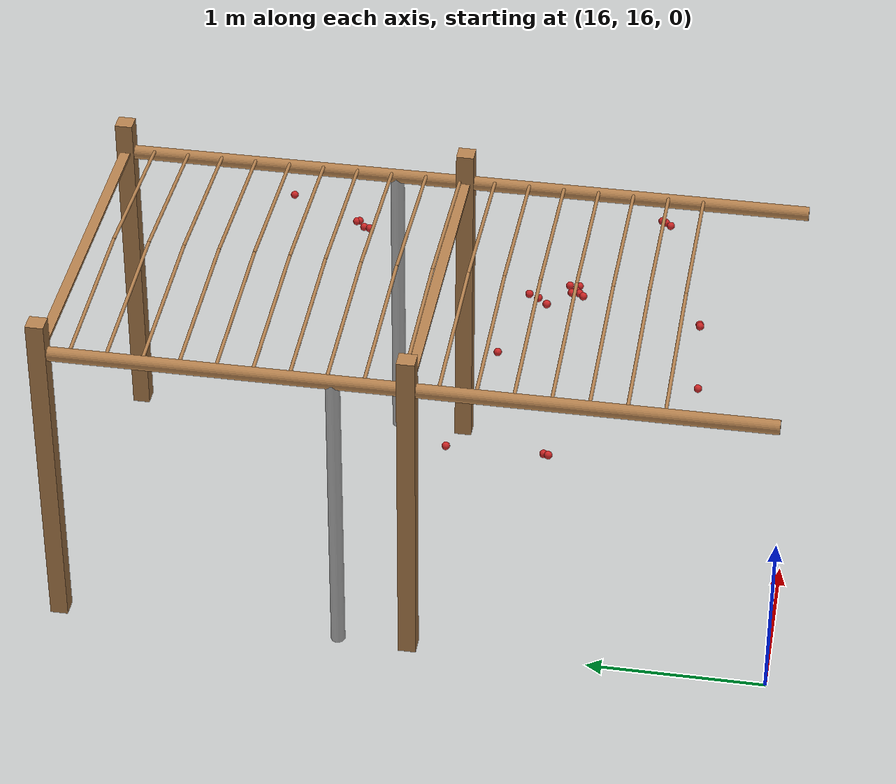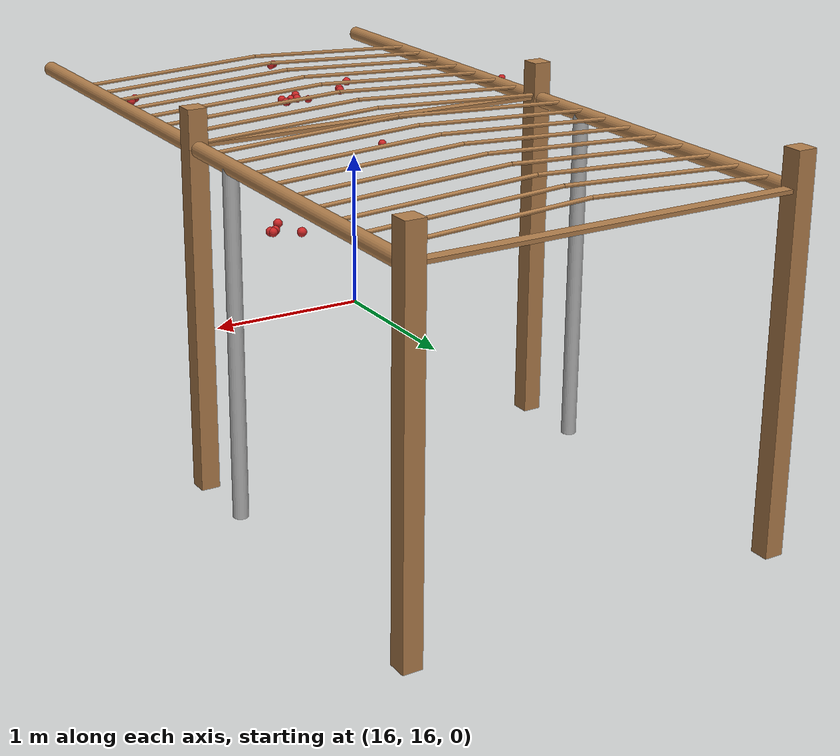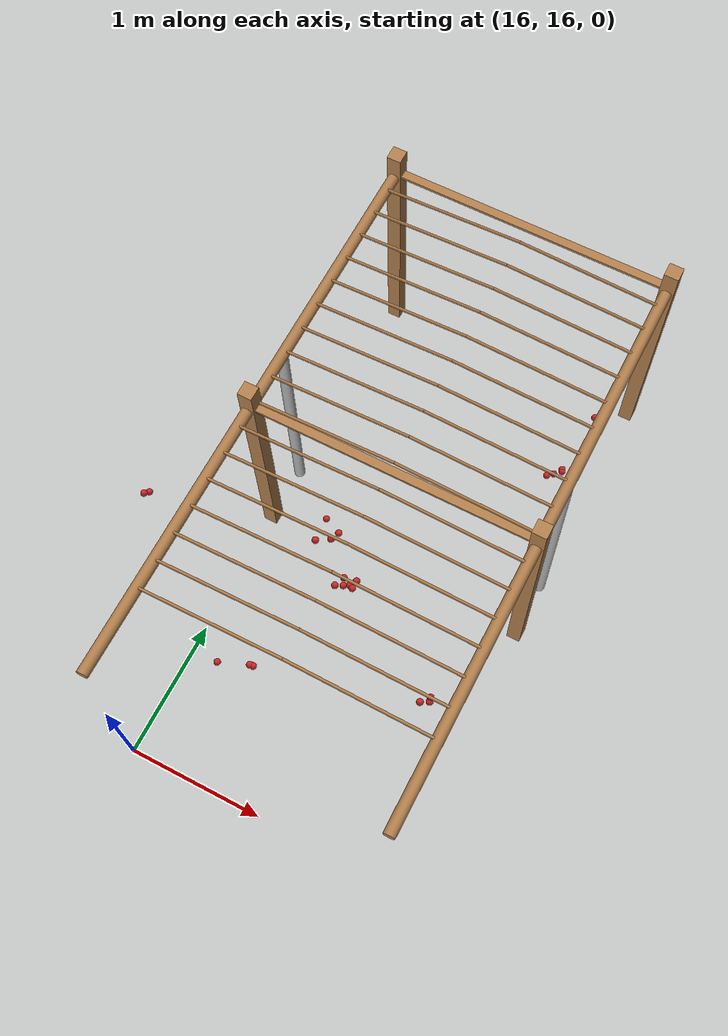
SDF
<sdf version="1.4">
 <model name="pergola">
  <include><name>post_97</name><pose>16.0 18.0 0 0 0 0</pose><uri>model://post</uri></include>
  <include><name>post_98</name><pose>16.0 20.0 0 0 0 0</pose><uri>model://post</uri></include>
  <include><name>post_108</name><pose>18.0 18.0 0 0 0 0</pose><uri>model://post</uri></include>
  <include><name>post_109</name><pose>18.0 20.0 0 0 0 0</pose><uri>model://post</uri></include>
  <link name="beam_97">
   <pose>17.0 18.0 1.81 0 0 0</pose>
   <collision name="collision"><geometry><box><size>2.0 0.06 0.02</size></box></geometry></collision>
   <visual name="visual">
    <geometry><box><size>2.0 0.06 0.02</size></box></geometry>
    <material><script><name>Gazebo/Wood</name></script></material>
   </visual>
   <inertial>
    <mass>5</mass>
    <inertia>
     <ixx>0.0016666666666666668</ixx>
     <ixy>0.0</ixy>
     <ixz>0.0</ixz>
     <iyy>1.6681666666666664</iyy>
     <iyz>0.0</iyz>
     <izz>1.6668333333333332</izz>
    </inertia>
   </inertial>
  </link>
  <link name="beam_98">
   <pose>17.0 20.0 1.81 0 0 0</pose>
   <collision name="collision"><geometry><box><size>2.0 0.06 0.02</size></box></geometry></collision>
   <visual name="visual">
    <geometry><box><size>2.0 0.06 0.02</size></box></geometry>
    <material><script><name>Gazebo/Wood</name></script></material>
   </visual>
   <inertial>
    <mass>5</mass>
    <inertia>
     <ixx>0.0016666666666666668</ixx>
     <ixy>0.0</ixy>
     <ixz>0.0</ixz>
     <iyy>1.6681666666666664</iyy>
     <iyz>0.0</iyz>
     <izz>1.6668333333333332</izz>
    </inertia>
   </inertial>
  </link>
  <include><name>tree_89</name><pose>16.0 18.4 0 0 0 0</pose><uri>model://tree_trunk</uri></include>
  <include><name>tree_99</name><pose>18.0 18.4 0 0 0 0</pose><uri>model://tree_trunk</uri></include>
  <link name="baseBranch_88">
   <pose>16.0 17.0 1.8 1.5707963267948966 0 0</pose>
   <collision name="collision">
    <geometry><cylinder><radius>0.04</radius><length>1.94</length></cylinder></geometry>
   </collision>
   <visual name="visual">
    <geometry><cylinder><radius>0.04</radius><length>1.94</length></cylinder></geometry>
    <material><script><name>Gazebo/WoodFloor</name></script></material>
   </visual>
   <inertial>
    <mass>10</mass>
    <inertia>
     <ixx>3.140333333333333</ixx>
     <ixy>0.0</ixy>
     <ixz>0.0</ixz>
     <iyy>3.140333333333333</iyy>
     <iyz>0.0</iyz>
     <izz>0.008</izz>
    </inertia>
   </inertial>
  </link>
  <link name="baseBranch_89">
   <pose>16.0 19.0 1.8 1.5707963267948966 0 0</pose>
   <collision name="collision">
    <geometry><cylinder><radius>0.04</radius><length>1.94</length></cylinder></geometry>
   </collision>
   <visual name="visual">
    <geometry><cylinder><radius>0.04</radius><length>1.94</length></cylinder></geometry>
    <material><script><name>Gazebo/WoodFloor</name></script></material>
   </visual>
   <inertial>
    <mass>10</mass>
    <inertia>
     <ixx>3.140333333333333</ixx>
     <ixy>0.0</ixy>
     <ixz>0.0</ixz>
     <iyy>3.140333333333333</iyy>
     <iyz>0.0</iyz>
     <izz>0.008</izz>
    </inertia>
   </inertial>
  </link>
  <link name="baseBranch_98">
   <pose>18.0 17.0 1.8 1.5707963267948966 0 0</pose>
   <collision name="collision">
    <geometry><cylinder><radius>0.04</radius><length>1.94</length></cylinder></geometry>
   </collision>
   <visual name="visual">
    <geometry><cylinder><radius>0.04</radius><length>1.94</length></cylinder></geometry>
    <material><script><name>Gazebo/WoodFloor</name></script></material>
   </visual>
   <inertial>
    <mass>10</mass>
    <inertia>
     <ixx>3.140333333333333</ixx>
     <ixy>0.0</ixy>
     <ixz>0.0</ixz>
     <iyy>3.140333333333333</iyy>
     <iyz>0.0</iyz>
     <izz>0.008</izz>
    </inertia>
   </inertial>
  </link>
  <link name="baseBranch_99">
   <pose>18.0 19.0 1.8 1.5707963267948966 0 0</pose>
   <collision name="collision">
    <geometry><cylinder><radius>0.04</radius><length>1.94</length></cylinder></geometry>
   </collision>
   <visual name="visual">
    <geometry><cylinder><radius>0.04</radius><length>1.94</length></cylinder></geometry>
    <material><script><name>Gazebo/WoodFloor</name></script></material>
   </visual>
   <inertial>
    <mass>10</mass>
    <inertia>
     <ixx>3.140333333333333</ixx>
     <ixy>0.0</ixy>
     <ixz>0.0</ixz>
     <iyy>3.140333333333333</iyy>
     <iyz>0.0</iyz>
     <izz>0.008</izz>
    </inertia>
   </inertial>
  </link>
  <link name="vine_1766">
   <pose>16.5 16.630000000000003 1.85 0 1.5208379310729538 0</pose>
   <collision name="collision">
    <geometry><cylinder><radius>0.01</radius><length>1.0012492197250393</length></cylinder></geometry>
   </collision>
   <visual name="visual">
    <geometry><cylinder><radius>0.01</radius><length>1.0012492197250393</length></cylinder></geometry>
    <material><script><name>Gazebo/WoodFloor</name></script></material>
   </visual>
   <inertial>
    <mass>5</mass>
    <inertia>
     <ixx>0.41783333333333345</ixx>
     <ixy>0.0</ixy>
     <ixz>0.0</ixz>
     <iyy>0.41783333333333345</iyy>
     <iyz>0.0</iyz>
     <izz>0.00025</izz>
    </inertia>
   </inertial>
  </link>
  <link name="vine_1767">
   <pose>17.5 16.630000000000003 1.85 0 -1.5208379310729538 0</pose>
   <collision name="collision">
    <geometry><cylinder><radius>0.01</radius><length>1.0012492197250393</length></cylinder></geometry>
   </collision>
   <visual name="visual">
    <geometry><cylinder><radius>0.01</radius><length>1.0012492197250393</length></cylinder></geometry>
    <material><script><name>Gazebo/WoodFloor</name></script></material>
   </visual>
   <inertial>
    <mass>5</mass>
    <inertia>
     <ixx>0.41783333333333345</ixx>
     <ixy>0.0</ixy>
     <ixz>0.0</ixz>
     <iyy>0.41783333333333345</iyy>
     <iyz>0.0</iyz>
     <izz>0.00025</izz>
    </inertia>
   </inertial>
  </link>
  <link name="vine_1768">
   <pose>16.5 16.830000000000002 1.85 0 1.5208379310729538 0</pose>
   <collision name="collision">
    <geometry><cylinder><radius>0.01</radius><length>1.0012492197250393</length></cylinder></geometry>
   </collision>
   <visual name="visual">
    <geometry><cylinder><radius>0.01</radius><length>1.0012492197250393</length></cylinder></geometry>
    <material><script><name>Gazebo/WoodFloor</name></script></material>
   </visual>
   <inertial>
    <mass>5</mass>
    <inertia>
     <ixx>0.41783333333333345</ixx>
     <ixy>0.0</ixy>
     <ixz>0.0</ixz>
     <iyy>0.41783333333333345</iyy>
     <iyz>0.0</iyz>
     <izz>0.00025</izz>
    </inertia>
   </inertial>
  </link>
  <link name="vine_1769">
   <pose>17.5 16.830000000000002 1.85 0 -1.5208379310729538 0</pose>
   <collision name="collision">
    <geometry><cylinder><radius>0.01</radius><length>1.0012492197250393</length></cylinder></geometry>
   </collision>
   <visual name="visual">
    <geometry><cylinder><radius>0.01</radius><length>1.0012492197250393</length></cylinder></geometry>
    <material><script><name>Gazebo/WoodFloor</name></script></material>
   </visual>
   <inertial>
    <mass>5</mass>
    <inertia>
     <ixx>0.41783333333333345</ixx>
     <ixy>0.0</ixy>
     <ixz>0.0</ixz>
     <iyy>0.41783333333333345</iyy>
     <iyz>0.0</iyz>
     <izz>0.00025</izz>
    </inertia>
   </inertial>
  </link>
  <link name="vine_1770">
   <pose>16.5 17.03 1.85 0 1.5208379310729538 0</pose>
   <collision name="collision">
    <geometry><cylinder><radius>0.01</radius><length>1.0012492197250393</length></cylinder></geometry>
   </collision>
   <visual name="visual">
    <geometry><cylinder><radius>0.01</radius><length>1.0012492197250393</length></cylinder></geometry>
    <material><script><name>Gazebo/WoodFloor</name></script></material>
   </visual>
   <inertial>
    <mass>5</mass>
    <inertia>
     <ixx>0.41783333333333345</ixx>
     <ixy>0.0</ixy>
     <ixz>0.0</ixz>
     <iyy>0.41783333333333345</iyy>
     <iyz>0.0</iyz>
     <izz>0.00025</izz>
    </inertia>
   </inertial>
  </link>
  <link name="vine_1771">
   <pose>17.5 17.03 1.85 0 -1.5208379310729538 0</pose>
   <collision name="collision">
    <geometry><cylinder><radius>0.01</radius><length>1.0012492197250393</length></cylinder></geometry>
   </collision>
   <visual name="visual">
    <geometry><cylinder><radius>0.01</radius><length>1.0012492197250393</length></cylinder></geometry>
    <material><script><name>Gazebo/WoodFloor</name></script></material>
   </visual>
   <inertial>
    <mass>5</mass>
    <inertia>
     <ixx>0.41783333333333345</ixx>
     <ixy>0.0</ixy>
     <ixz>0.0</ixz>
     <iyy>0.41783333333333345</iyy>
     <iyz>0.0</iyz>
     <izz>0.00025</izz>
    </inertia>
   </inertial>
  </link>
  <link name="vine_1772">
   <pose>16.5 17.23 1.85 0 1.5208379310729538 0</pose>
   <collision name="collision">
    <geometry><cylinder><radius>0.01</radius><length>1.0012492197250393</length></cylinder></geometry>
   </collision>
   <visual name="visual">
    <geometry><cylinder><radius>0.01</radius><length>1.0012492197250393</length></cylinder></geometry>
    <material><script><name>Gazebo/WoodFloor</name></script></material>
   </visual>
   <inertial>
    <mass>5</mass>
    <inertia>
     <ixx>0.41783333333333345</ixx>
     <ixy>0.0</ixy>
     <ixz>0.0</ixz>
     <iyy>0.41783333333333345</iyy>
     <iyz>0.0</iyz>
     <izz>0.00025</izz>
    </inertia>
   </inertial>
  </link>
  <link name="vine_1773">
   <pose>17.5 17.23 1.85 0 -1.5208379310729538 0</pose>
   <collision name="collision">
    <geometry><cylinder><radius>0.01</radius><length>1.0012492197250393</length></cylinder></geometry>
   </collision>
   <visual name="visual">
    <geometry><cylinder><radius>0.01</radius><length>1.0012492197250393</length></cylinder></geometry>
    <material><script><name>Gazebo/WoodFloor</name></script></material>
   </visual>
   <inertial>
    <mass>5</mass>
    <inertia>
     <ixx>0.41783333333333345</ixx>
     <ixy>0.0</ixy>
     <ixz>0.0</ixz>
     <iyy>0.41783333333333345</iyy>
     <iyz>0.0</iyz>
     <izz>0.00025</izz>
    </inertia>
   </inertial>
  </link>
  <link name="vine_1774">
   <pose>16.5 17.430000000000003 1.85 0 1.5208379310729538 0</pose>
   <collision name="collision">
    <geometry><cylinder><radius>0.01</radius><length>1.0012492197250393</length></cylinder></geometry>
   </collision>
   <visual name="visual">
    <geometry><cylinder><radius>0.01</radius><length>1.0012492197250393</length></cylinder></geometry>
    <material><script><name>Gazebo/WoodFloor</name></script></material>
   </visual>
   <inertial>
    <mass>5</mass>
    <inertia>
     <ixx>0.41783333333333345</ixx>
     <ixy>0.0</ixy>
     <ixz>0.0</ixz>
     <iyy>0.41783333333333345</iyy>
     <iyz>0.0</iyz>
     <izz>0.00025</izz>
    </inertia>
   </inertial>
  </link>
  <link name="vine_1775">
   <pose>17.5 17.430000000000003 1.85 0 -1.5208379310729538 0</pose>
   <collision name="collision">
    <geometry><cylinder><radius>0.01</radius><length>1.0012492197250393</length></cylinder></geometry>
   </collision>
   <visual name="visual">
    <geometry><cylinder><radius>0.01</radius><length>1.0012492197250393</length></cylinder></geometry>
    <material><script><name>Gazebo/WoodFloor</name></script></material>
   </visual>
   <inertial>
    <mass>5</mass>
    <inertia>
     <ixx>0.41783333333333345</ixx>
     <ixy>0.0</ixy>
     <ixz>0.0</ixz>
     <iyy>0.41783333333333345</iyy>
     <iyz>0.0</iyz>
     <izz>0.00025</izz>
    </inertia>
   </inertial>
  </link>
  <link name="vine_1776">
   <pose>16.5 17.630000000000003 1.85 0 1.5208379310729538 0</pose>
   <collision name="collision">
    <geometry><cylinder><radius>0.01</radius><length>1.0012492197250393</length></cylinder></geometry>
   </collision>
   <visual name="visual">
    <geometry><cylinder><radius>0.01</radius><length>1.0012492197250393</length></cylinder></geometry>
    <material><script><name>Gazebo/WoodFloor</name></script></material>
   </visual>
   <inertial>
    <mass>5</mass>
    <inertia>
     <ixx>0.41783333333333345</ixx>
     <ixy>0.0</ixy>
     <ixz>0.0</ixz>
     <iyy>0.41783333333333345</iyy>
     <iyz>0.0</iyz>
     <izz>0.00025</izz>
    </inertia>
   </inertial>
  </link>
  <link name="vine_1777">
   <pose>17.5 17.630000000000003 1.85 0 -1.5208379310729538 0</pose>
   <collision name="collision">
    <geometry><cylinder><radius>0.01</radius><length>1.0012492197250393</length></cylinder></geometry>
   </collision>
   <visual name="visual">
    <geometry><cylinder><radius>0.01</radius><length>1.0012492197250393</length></cylinder></geometry>
    <material><script><name>Gazebo/WoodFloor</name></script></material>
   </visual>
   <inertial>
    <mass>5</mass>
    <inertia>
     <ixx>0.41783333333333345</ixx>
     <ixy>0.0</ixy>
     <ixz>0.0</ixz>
     <iyy>0.41783333333333345</iyy>
     <iyz>0.0</iyz>
     <izz>0.00025</izz>
    </inertia>
   </inertial>
  </link>
  <link name="vine_1778">
   <pose>16.5 17.830000000000002 1.85 0 1.5208379310729538 0</pose>
   <collision name="collision">
    <geometry><cylinder><radius>0.01</radius><length>1.0012492197250393</length></cylinder></geometry>
   </collision>
   <visual name="visual">
    <geometry><cylinder><radius>0.01</radius><length>1.0012492197250393</length></cylinder></geometry>
    <material><script><name>Gazebo/WoodFloor</name></script></material>
   </visual>
   <inertial>
    <mass>5</mass>
    <inertia>
     <ixx>0.41783333333333345</ixx>
     <ixy>0.0</ixy>
     <ixz>0.0</ixz>
     <iyy>0.41783333333333345</iyy>
     <iyz>0.0</iyz>
     <izz>0.00025</izz>
    </inertia>
   </inertial>
  </link>
  <link name="vine_1779">
   <pose>17.5 17.830000000000002 1.85 0 -1.5208379310729538 0</pose>
   <collision name="collision">
    <geometry><cylinder><radius>0.01</radius><length>1.0012492197250393</length></cylinder></geometry>
   </collision>
   <visual name="visual">
    <geometry><cylinder><radius>0.01</radius><length>1.0012492197250393</length></cylinder></geometry>
    <material><script><name>Gazebo/WoodFloor</name></script></material>
   </visual>
   <inertial>
    <mass>5</mass>
    <inertia>
     <ixx>0.41783333333333345</ixx>
     <ixy>0.0</ixy>
     <ixz>0.0</ixz>
     <iyy>0.41783333333333345</iyy>
     <iyz>0.0</iyz>
     <izz>0.00025</izz>
    </inertia>
   </inertial>
  </link>
  <link name="vine_1780">
   <pose>16.5 18.03 1.85 0 1.5208379310729538 0</pose>
   <collision name="collision">
    <geometry><cylinder><radius>0.01</radius><length>1.0012492197250393</length></cylinder></geometry>
   </collision>
   <visual name="visual">
    <geometry><cylinder><radius>0.01</radius><length>1.0012492197250393</length></cylinder></geometry>
    <material><script><name>Gazebo/WoodFloor</name></script></material>
   </visual>
   <inertial>
    <mass>5</mass>
    <inertia>
     <ixx>0.41783333333333345</ixx>
     <ixy>0.0</ixy>
     <ixz>0.0</ixz>
     <iyy>0.41783333333333345</iyy>
     <iyz>0.0</iyz>
     <izz>0.00025</izz>
    </inertia>
   </inertial>
  </link>
  <link name="vine_1781">
   <pose>17.5 18.03 1.85 0 -1.5208379310729538 0</pose>
   <collision name="collision">
    <geometry><cylinder><radius>0.01</radius><length>1.0012492197250393</length></cylinder></geometry>
   </collision>
   <visual name="visual">
    <geometry><cylinder><radius>0.01</radius><length>1.0012492197250393</length></cylinder></geometry>
    <material><script><name>Gazebo/WoodFloor</name></script></material>
   </visual>
   <inertial>
    <mass>5</mass>
    <inertia>
     <ixx>0.41783333333333345</ixx>
     <ixy>0.0</ixy>
     <ixz>0.0</ixz>
     <iyy>0.41783333333333345</iyy>
     <iyz>0.0</iyz>
     <izz>0.00025</izz>
    </inertia>
   </inertial>
  </link>
  <link name="vine_1782">
   <pose>16.5 18.23 1.85 0 1.5208379310729538 0</pose>
   <collision name="collision">
    <geometry><cylinder><radius>0.01</radius><length>1.0012492197250393</length></cylinder></geometry>
   </collision>
   <visual name="visual">
    <geometry><cylinder><radius>0.01</radius><length>1.0012492197250393</length></cylinder></geometry>
    <material><script><name>Gazebo/WoodFloor</name></script></material>
   </visual>
   <inertial>
    <mass>5</mass>
    <inertia>
     <ixx>0.41783333333333345</ixx>
     <ixy>0.0</ixy>
     <ixz>0.0</ixz>
     <iyy>0.41783333333333345</iyy>
     <iyz>0.0</iyz>
     <izz>0.00025</izz>
    </inertia>
   </inertial>
  </link>
  <link name="vine_1783">
   <pose>17.5 18.23 1.85 0 -1.5208379310729538 0</pose>
   <collision name="collision">
    <geometry><cylinder><radius>0.01</radius><length>1.0012492197250393</length></cylinder></geometry>
   </collision>
   <visual name="visual">
    <geometry><cylinder><radius>0.01</radius><length>1.0012492197250393</length></cylinder></geometry>
    <material><script><name>Gazebo/WoodFloor</name></script></material>
   </visual>
   <inertial>
    <mass>5</mass>
    <inertia>
     <ixx>0.41783333333333345</ixx>
     <ixy>0.0</ixy>
     <ixz>0.0</ixz>
     <iyy>0.41783333333333345</iyy>
     <iyz>0.0</iyz>
     <izz>0.00025</izz>
    </inertia>
   </inertial>
  </link>
  <link name="vine_1784">
   <pose>16.5 18.430000000000003 1.85 0 1.5208379310729538 0</pose>
   <collision name="collision">
    <geometry><cylinder><radius>0.01</radius><length>1.0012492197250393</length></cylinder></geometry>
   </collision>
   <visual name="visual">
    <geometry><cylinder><radius>0.01</radius><length>1.0012492197250393</length></cylinder></geometry>
    <material><script><name>Gazebo/WoodFloor</name></script></material>
   </visual>
   <inertial>
    <mass>5</mass>
    <inertia>
     <ixx>0.41783333333333345</ixx>
     <ixy>0.0</ixy>
     <ixz>0.0</ixz>
     <iyy>0.41783333333333345</iyy>
     <iyz>0.0</iyz>
     <izz>0.00025</izz>
    </inertia>
   </inertial>
  </link>
  <link name="vine_1785">
   <pose>17.5 18.430000000000003 1.85 0 -1.5208379310729538 0</pose>
   <collision name="collision">
    <geometry><cylinder><radius>0.01</radius><length>1.0012492197250393</length></cylinder></geometry>
   </collision>
   <visual name="visual">
    <geometry><cylinder><radius>0.01</radius><length>1.0012492197250393</length></cylinder></geometry>
    <material><script><name>Gazebo/WoodFloor</name></script></material>
   </visual>
   <inertial>
    <mass>5</mass>
    <inertia>
     <ixx>0.41783333333333345</ixx>
     <ixy>0.0</ixy>
     <ixz>0.0</ixz>
     <iyy>0.41783333333333345</iyy>
     <iyz>0.0</iyz>
     <izz>0.00025</izz>
    </inertia>
   </inertial>
  </link>
  <link name="vine_1786">
   <pose>16.5 18.630000000000003 1.85 0 1.5208379310729538 0</pose>
   <collision name="collision">
    <geometry><cylinder><radius>0.01</radius><length>1.0012492197250393</length></cylinder></geometry>
   </collision>
   <visual name="visual">
    <geometry><cylinder><radius>0.01</radius><length>1.0012492197250393</length></cylinder></geometry>
    <material><script><name>Gazebo/WoodFloor</name></script></material>
   </visual>
   <inertial>
    <mass>5</mass>
    <inertia>
     <ixx>0.41783333333333345</ixx>
     <ixy>0.0</ixy>
     <ixz>0.0</ixz>
     <iyy>0.41783333333333345</iyy>
     <iyz>0.0</iyz>
     <izz>0.00025</izz>
    </inertia>
   </inertial>
  </link>
  <link name="vine_1787">
   <pose>17.5 18.630000000000003 1.85 0 -1.5208379310729538 0</pose>
   <collision name="collision">
    <geometry><cylinder><radius>0.01</radius><length>1.0012492197250393</length></cylinder></geometry>
   </collision>
   <visual name="visual">
    <geometry><cylinder><radius>0.01</radius><length>1.0012492197250393</length></cylinder></geometry>
    <material><script><name>Gazebo/WoodFloor</name></script></material>
   </visual>
   <inertial>
    <mass>5</mass>
    <inertia>
     <ixx>0.41783333333333345</ixx>
     <ixy>0.0</ixy>
     <ixz>0.0</ixz>
     <iyy>0.41783333333333345</iyy>
     <iyz>0.0</iyz>
     <izz>0.00025</izz>
    </inertia>
   </inertial>
  </link>
  <link name="vine_1788">
   <pose>16.5 18.830000000000002 1.85 0 1.5208379310729538 0</pose>
   <collision name="collision">
    <geometry><cylinder><radius>0.01</radius><length>1.0012492197250393</length></cylinder></geometry>
   </collision>
   <visual name="visual">
    <geometry><cylinder><radius>0.01</radius><length>1.0012492197250393</length></cylinder></geometry>
    <material><script><name>Gazebo/WoodFloor</name></script></material>
   </visual>
   <inertial>
    <mass>5</mass>
    <inertia>
     <ixx>0.41783333333333345</ixx>
     <ixy>0.0</ixy>
     <ixz>0.0</ixz>
     <iyy>0.41783333333333345</iyy>
     <iyz>0.0</iyz>
     <izz>0.00025</izz>
    </inertia>
   </inertial>
  </link>
  <link name="vine_1789">
   <pose>17.5 18.830000000000002 1.85 0 -1.5208379310729538 0</pose>
   <collision name="collision">
    <geometry><cylinder><radius>0.01</radius><length>1.0012492197250393</length></cylinder></geometry>
   </collision>
   <visual name="visual">
    <geometry><cylinder><radius>0.01</radius><length>1.0012492197250393</length></cylinder></geometry>
    <material><script><name>Gazebo/WoodFloor</name></script></material>
   </visual>
   <inertial>
    <mass>5</mass>
    <inertia>
     <ixx>0.41783333333333345</ixx>
     <ixy>0.0</ixy>
     <ixz>0.0</ixz>
     <iyy>0.41783333333333345</iyy>
     <iyz>0.0</iyz>
     <izz>0.00025</izz>
    </inertia>
   </inertial>
  </link>
  <link name="vine_1790">
   <pose>16.5 19.03 1.85 0 1.5208379310729538 0</pose>
   <collision name="collision">
    <geometry><cylinder><radius>0.01</radius><length>1.0012492197250393</length></cylinder></geometry>
   </collision>
   <visual name="visual">
    <geometry><cylinder><radius>0.01</radius><length>1.0012492197250393</length></cylinder></geometry>
    <material><script><name>Gazebo/WoodFloor</name></script></material>
   </visual>
   <inertial>
    <mass>5</mass>
    <inertia>
     <ixx>0.41783333333333345</ixx>
     <ixy>0.0</ixy>
     <ixz>0.0</ixz>
     <iyy>0.41783333333333345</iyy>
     <iyz>0.0</iyz>
     <izz>0.00025</izz>
    </inertia>
   </inertial>
  </link>
  <link name="vine_1791">
   <pose>17.5 19.03 1.85 0 -1.5208379310729538 0</pose>
   <collision name="collision">
    <geometry><cylinder><radius>0.01</radius><length>1.0012492197250393</length></cylinder></geometry>
   </collision>
   <visual name="visual">
    <geometry><cylinder><radius>0.01</radius><length>1.0012492197250393</length></cylinder></geometry>
    <material><script><name>Gazebo/WoodFloor</name></script></material>
   </visual>
   <inertial>
    <mass>5</mass>
    <inertia>
     <ixx>0.41783333333333345</ixx>
     <ixy>0.0</ixy>
     <ixz>0.0</ixz>
     <iyy>0.41783333333333345</iyy>
     <iyz>0.0</iyz>
     <izz>0.00025</izz>
    </inertia>
   </inertial>
  </link>
  <link name="vine_1792">
   <pose>16.5 19.230000000000004 1.85 0 1.5208379310729538 0</pose>
   <collision name="collision">
    <geometry><cylinder><radius>0.01</radius><length>1.0012492197250393</length></cylinder></geometry>
   </collision>
   <visual name="visual">
    <geometry><cylinder><radius>0.01</radius><length>1.0012492197250393</length></cylinder></geometry>
    <material><script><name>Gazebo/WoodFloor</name></script></material>
   </visual>
   <inertial>
    <mass>5</mass>
    <inertia>
     <ixx>0.41783333333333345</ixx>
     <ixy>0.0</ixy>
     <ixz>0.0</ixz>
     <iyy>0.41783333333333345</iyy>
     <iyz>0.0</iyz>
     <izz>0.00025</izz>
    </inertia>
   </inertial>
  </link>
  <link name="vine_1793">
   <pose>17.5 19.230000000000004 1.85 0 -1.5208379310729538 0</pose>
   <collision name="collision">
    <geometry><cylinder><radius>0.01</radius><length>1.0012492197250393</length></cylinder></geometry>
   </collision>
   <visual name="visual">
    <geometry><cylinder><radius>0.01</radius><length>1.0012492197250393</length></cylinder></geometry>
    <material><script><name>Gazebo/WoodFloor</name></script></material>
   </visual>
   <inertial>
    <mass>5</mass>
    <inertia>
     <ixx>0.41783333333333345</ixx>
     <ixy>0.0</ixy>
     <ixz>0.0</ixz>
     <iyy>0.41783333333333345</iyy>
     <iyz>0.0</iyz>
     <izz>0.00025</izz>
    </inertia>
   </inertial>
  </link>
  <link name="vine_1794">
   <pose>16.5 19.430000000000003 1.85 0 1.5208379310729538 0</pose>
   <collision name="collision">
    <geometry><cylinder><radius>0.01</radius><length>1.0012492197250393</length></cylinder></geometry>
   </collision>
   <visual name="visual">
    <geometry><cylinder><radius>0.01</radius><length>1.0012492197250393</length></cylinder></geometry>
    <material><script><name>Gazebo/WoodFloor</name></script></material>
   </visual>
   <inertial>
    <mass>5</mass>
    <inertia>
     <ixx>0.41783333333333345</ixx>
     <ixy>0.0</ixy>
     <ixz>0.0</ixz>
     <iyy>0.41783333333333345</iyy>
     <iyz>0.0</iyz>
     <izz>0.00025</izz>
    </inertia>
   </inertial>
  </link>
  <link name="vine_1795">
   <pose>17.5 19.430000000000003 1.85 0 -1.5208379310729538 0</pose>
   <collision name="collision">
    <geometry><cylinder><radius>0.01</radius><length>1.0012492197250393</length></cylinder></geometry>
   </collision>
   <visual name="visual">
    <geometry><cylinder><radius>0.01</radius><length>1.0012492197250393</length></cylinder></geometry>
    <material><script><name>Gazebo/WoodFloor</name></script></material>
   </visual>
   <inertial>
    <mass>5</mass>
    <inertia>
     <ixx>0.41783333333333345</ixx>
     <ixy>0.0</ixy>
     <ixz>0.0</ixz>
     <iyy>0.41783333333333345</iyy>
     <iyz>0.0</iyz>
     <izz>0.00025</izz>
    </inertia>
   </inertial>
  </link>
  <link name="vine_1796">
   <pose>16.5 19.630000000000003 1.85 0 1.5208379310729538 0</pose>
   <collision name="collision">
    <geometry><cylinder><radius>0.01</radius><length>1.0012492197250393</length></cylinder></geometry>
   </collision>
   <visual name="visual">
    <geometry><cylinder><radius>0.01</radius><length>1.0012492197250393</length></cylinder></geometry>
    <material><script><name>Gazebo/WoodFloor</name></script></material>
   </visual>
   <inertial>
    <mass>5</mass>
    <inertia>
     <ixx>0.41783333333333345</ixx>
     <ixy>0.0</ixy>
     <ixz>0.0</ixz>
     <iyy>0.41783333333333345</iyy>
     <iyz>0.0</iyz>
     <izz>0.00025</izz>
    </inertia>
   </inertial>
  </link>
  <link name="vine_1797">
   <pose>17.5 19.630000000000003 1.85 0 -1.5208379310729538 0</pose>
   <collision name="collision">
    <geometry><cylinder><radius>0.01</radius><length>1.0012492197250393</length></cylinder></geometry>
   </collision>
   <visual name="visual">
    <geometry><cylinder><radius>0.01</radius><length>1.0012492197250393</length></cylinder></geometry>
    <material><script><name>Gazebo/WoodFloor</name></script></material>
   </visual>
   <inertial>
    <mass>5</mass>
    <inertia>
     <ixx>0.41783333333333345</ixx>
     <ixy>0.0</ixy>
     <ixz>0.0</ixz>
     <iyy>0.41783333333333345</iyy>
     <iyz>0.0</iyz>
     <izz>0.00025</izz>
    </inertia>
   </inertial>
  </link>
  <link name="vine_1798">
   <pose>16.5 19.830000000000002 1.85 0 1.5208379310729538 0</pose>
   <collision name="collision">
    <geometry><cylinder><radius>0.01</radius><length>1.0012492197250393</length></cylinder></geometry>
   </collision>
   <visual name="visual">
    <geometry><cylinder><radius>0.01</radius><length>1.0012492197250393</length></cylinder></geometry>
    <material><script><name>Gazebo/WoodFloor</name></script></material>
   </visual>
   <inertial>
    <mass>5</mass>
    <inertia>
     <ixx>0.41783333333333345</ixx>
     <ixy>0.0</ixy>
     <ixz>0.0</ixz>
     <iyy>0.41783333333333345</iyy>
     <iyz>0.0</iyz>
     <izz>0.00025</izz>
    </inertia>
   </inertial>
  </link>
  <link name="vine_1799">
   <pose>17.5 19.830000000000002 1.85 0 -1.5208379310729538 0</pose>
   <collision name="collision">
    <geometry><cylinder><radius>0.01</radius><length>1.0012492197250393</length></cylinder></geometry>
   </collision>
   <visual name="visual">
    <geometry><cylinder><radius>0.01</radius><length>1.0012492197250393</length></cylinder></geometry>
    <material><script><name>Gazebo/WoodFloor</name></script></material>
   </visual>
   <inertial>
    <mass>5</mass>
    <inertia>
     <ixx>0.41783333333333345</ixx>
     <ixy>0.0</ixy>
     <ixz>0.0</ixz>
     <iyy>0.41783333333333345</iyy>
     <iyz>0.0</iyz>
     <izz>0.00025</izz>
    </inertia>
   </inertial>
  </link>
  <link name="fruit_151">
   <pose>16.81019673330695 17.3686413380731 1.856581764790559 0 0 0</pose>
   <collision name="fruit_collision_151"><geometry><sphere><radius>0.022</radius></sphere></geometry></collision>
   <visual name="visual">
    <geometry><sphere><radius>0.022</radius></sphere></geometry>
    <material><script><name>Gazebo/Red</name></script></material>
   </visual>
   <inertial>
    <mass>0.05</mass>
    <inertia>
     <ixx>9.679999999999999e-06</ixx>
     <ixy>0.0</ixy>
     <ixz>0.0</ixz>
     <iyy>9.679999999999999e-06</iyy>
     <iyz>0.0</iyz>
     <izz>9.679999999999999e-06</izz>
    </inertia>
   </inertial>
   <sensor name="fruit_contact_151" type="contact">
    <contact><collision>fruit_collision_151</collision></contact>
   </sensor>
  </link>
  <link name="fruit_172">
   <pose>17.032840151893105 17.194886263816016 1.7717519603856609 0 0 0</pose>
   <collision name="fruit_collision_172"><geometry><sphere><radius>0.022</radius></sphere></geometry></collision>
   <visual name="visual">
    <geometry><sphere><radius>0.022</radius></sphere></geometry>
    <material><script><name>Gazebo/Red</name></script></material>
   </visual>
   <inertial>
    <mass>0.05</mass>
    <inertia>
     <ixx>9.679999999999999e-06</ixx>
     <ixy>0.0</ixy>
     <ixz>0.0</ixz>
     <iyy>9.679999999999999e-06</iyy>
     <iyz>0.0</iyz>
     <izz>9.679999999999999e-06</izz>
    </inertia>
   </inertial>
   <sensor name="fruit_contact_172" type="contact">
    <contact><collision>fruit_collision_172</collision></contact>
   </sensor>
  </link>
  <link name="fruit_183">
   <pose>17.82865123177862 18.534514321298893 1.5363025790711289 0 0 0</pose>
   <collision name="fruit_collision_183"><geometry><sphere><radius>0.022</radius></sphere></geometry></collision>
   <visual name="visual">
    <geometry><sphere><radius>0.022</radius></sphere></geometry>
    <material><script><name>Gazebo/Red</name></script></material>
   </visual>
   <inertial>
    <mass>0.05</mass>
    <inertia>
     <ixx>9.679999999999999e-06</ixx>
     <ixy>0.0</ixy>
     <ixz>0.0</ixz>
     <iyy>9.679999999999999e-06</iyy>
     <iyz>0.0</iyz>
     <izz>9.679999999999999e-06</izz>
    </inertia>
   </inertial>
   <sensor name="fruit_contact_183" type="contact">
    <contact><collision>fruit_collision_183</collision></contact>
   </sensor>
  </link>
  <link name="fruit_209">
   <pose>16.73342809160284 17.62219861677833 1.5575245109836762 0 0 0</pose>
   <collision name="fruit_collision_209"><geometry><sphere><radius>0.022</radius></sphere></geometry></collision>
   <visual name="visual">
    <geometry><sphere><radius>0.022</radius></sphere></geometry>
    <material><script><name>Gazebo/Red</name></script></material>
   </visual>
   <inertial>
    <mass>0.05</mass>
    <inertia>
     <ixx>9.679999999999999e-06</ixx>
     <ixy>0.0</ixy>
     <ixz>0.0</ixz>
     <iyy>9.679999999999999e-06</iyy>
     <iyz>0.0</iyz>
     <izz>9.679999999999999e-06</izz>
    </inertia>
   </inertial>
   <sensor name="fruit_contact_209" type="contact">
    <contact><collision>fruit_collision_209</collision></contact>
   </sensor>
  </link>
  <link name="fruit_214">
   <pose>15.898827640438546 17.774325481208788 1.5320955325414956 0 0 0</pose>
   <collision name="fruit_collision_214"><geometry><sphere><radius>0.022</radius></sphere></geometry></collision>
   <visual name="visual">
    <geometry><sphere><radius>0.022</radius></sphere></geometry>
    <material><script><name>Gazebo/Red</name></script></material>
   </visual>
   <inertial>
    <mass>0.05</mass>
    <inertia>
     <ixx>9.679999999999999e-06</ixx>
     <ixy>0.0</ixy>
     <ixz>0.0</ixz>
     <iyy>9.679999999999999e-06</iyy>
     <iyz>0.0</iyz>
     <izz>9.679999999999999e-06</izz>
    </inertia>
   </inertial>
   <sensor name="fruit_contact_214" type="contact">
    <contact><collision>fruit_collision_214</collision></contact>
   </sensor>
  </link>
  <link name="fruit_228">
   <pose>17.942907844455476 18.995720576050772 1.6422747573611913 0 0 0</pose>
   <collision name="fruit_collision_228"><geometry><sphere><radius>0.022</radius></sphere></geometry></collision>
   <visual name="visual">
    <geometry><sphere><radius>0.022</radius></sphere></geometry>
    <material><script><name>Gazebo/Red</name></script></material>
   </visual>
   <inertial>
    <mass>0.05</mass>
    <inertia>
     <ixx>9.679999999999999e-06</ixx>
     <ixy>0.0</ixy>
     <ixz>0.0</ixz>
     <iyy>9.679999999999999e-06</iyy>
     <iyz>0.0</iyz>
     <izz>9.679999999999999e-06</izz>
    </inertia>
   </inertial>
   <sensor name="fruit_contact_228" type="contact">
    <contact><collision>fruit_collision_228</collision></contact>
   </sensor>
  </link>
  <link name="fruit_278">
   <pose>17.805391937295678 16.794768521878378 1.7634486298607606 0 0 0</pose>
   <collision name="fruit_collision_278"><geometry><sphere><radius>0.022</radius></sphere></geometry></collision>
   <visual name="visual">
    <geometry><sphere><radius>0.022</radius></sphere></geometry>
    <material><script><name>Gazebo/Red</name></script></material>
   </visual>
   <inertial>
    <mass>0.05</mass>
    <inertia>
     <ixx>9.679999999999999e-06</ixx>
     <ixy>0.0</ixy>
     <ixz>0.0</ixz>
     <iyy>9.679999999999999e-06</iyy>
     <iyz>0.0</iyz>
     <izz>9.679999999999999e-06</izz>
    </inertia>
   </inertial>
   <sensor name="fruit_contact_278" type="contact">
    <contact><collision>fruit_collision_278</collision></contact>
   </sensor>
  </link>
  <link name="fruit_381">
   <pose>17.848451990778305 16.84695150197896 1.762043245670526 0 0 0</pose>
   <collision name="fruit_collision_381"><geometry><sphere><radius>0.022</radius></sphere></geometry></collision>
   <visual name="visual">
    <geometry><sphere><radius>0.022</radius></sphere></geometry>
    <material><script><name>Gazebo/Red</name></script></material>
   </visual>
   <inertial>
    <mass>0.05</mass>
    <inertia>
     <ixx>9.679999999999999e-06</ixx>
     <ixy>0.0</ixy>
     <ixz>0.0</ixz>
     <iyy>9.679999999999999e-06</iyy>
     <iyz>0.0</iyz>
     <izz>9.679999999999999e-06</izz>
    </inertia>
   </inertial>
   <sensor name="fruit_contact_381" type="contact">
    <contact><collision>fruit_collision_381</collision></contact>
   </sensor>
  </link>
  <link name="fruit_425">
   <pose>16.84995658628416 16.53522253554549 1.7886643014171546 0 0 0</pose>
   <collision name="fruit_collision_425"><geometry><sphere><radius>0.022</radius></sphere></geometry></collision>
   <visual name="visual">
    <geometry><sphere><radius>0.022</radius></sphere></geometry>
    <material><script><name>Gazebo/Red</name></script></material>
   </visual>
   <inertial>
    <mass>0.05</mass>
    <inertia>
     <ixx>9.679999999999999e-06</ixx>
     <ixy>0.0</ixy>
     <ixz>0.0</ixz>
     <iyy>9.679999999999999e-06</iyy>
     <iyz>0.0</iyz>
     <izz>9.679999999999999e-06</izz>
    </inertia>
   </inertial>
   <sensor name="fruit_contact_425" type="contact">
    <contact><collision>fruit_collision_425</collision></contact>
   </sensor>
  </link>
  <link name="fruit_445">
   <pose>16.59263145629384 16.50789322449666 1.5505911702416766 0 0 0</pose>
   <collision name="fruit_collision_445"><geometry><sphere><radius>0.022</radius></sphere></geometry></collision>
   <visual name="visual">
    <geometry><sphere><radius>0.022</radius></sphere></geometry>
    <material><script><name>Gazebo/Red</name></script></material>
   </visual>
   <inertial>
    <mass>0.05</mass>
    <inertia>
     <ixx>9.679999999999999e-06</ixx>
     <ixy>0.0</ixy>
     <ixz>0.0</ixz>
     <iyy>9.679999999999999e-06</iyy>
     <iyz>0.0</iyz>
     <izz>9.679999999999999e-06</izz>
    </inertia>
   </inertial>
   <sensor name="fruit_contact_445" type="contact">
    <contact><collision>fruit_collision_445</collision></contact>
   </sensor>
  </link>
  <link name="fruit_503">
   <pose>17.13317205117059 17.22786947650779 1.7652715613891687 0 0 0</pose>
   <collision name="fruit_collision_503"><geometry><sphere><radius>0.022</radius></sphere></geometry></collision>
   <visual name="visual">
    <geometry><sphere><radius>0.022</radius></sphere></geometry>
    <material><script><name>Gazebo/Red</name></script></material>
   </visual>
   <inertial>
    <mass>0.05</mass>
    <inertia>
     <ixx>9.679999999999999e-06</ixx>
     <ixy>0.0</ixy>
     <ixz>0.0</ixz>
     <iyy>9.679999999999999e-06</iyy>
     <iyz>0.0</iyz>
     <izz>9.679999999999999e-06</izz>
    </inertia>
   </inertial>
   <sensor name="fruit_contact_503" type="contact">
    <contact><collision>fruit_collision_503</collision></contact>
   </sensor>
  </link>
  <link name="fruit_517">
   <pose>17.074897814672436 17.220548540955793 1.7586913499564858 0 0 0</pose>
   <collision name="fruit_collision_517"><geometry><sphere><radius>0.022</radius></sphere></geometry></collision>
   <visual name="visual">
    <geometry><sphere><radius>0.022</radius></sphere></geometry>
    <material><script><name>Gazebo/Red</name></script></material>
   </visual>
   <inertial>
    <mass>0.05</mass>
    <inertia>
     <ixx>9.679999999999999e-06</ixx>
     <ixy>0.0</ixy>
     <ixz>0.0</ixz>
     <iyy>9.679999999999999e-06</iyy>
     <iyz>0.0</iyz>
     <izz>9.679999999999999e-06</izz>
    </inertia>
   </inertial>
   <sensor name="fruit_contact_517" type="contact">
    <contact><collision>fruit_collision_517</collision></contact>
   </sensor>
  </link>
  <link name="fruit_526">
   <pose>17.133504155513126 17.28055432675484 1.7632488409879743 0 0 0</pose>
   <collision name="fruit_collision_526"><geometry><sphere><radius>0.022</radius></sphere></geometry></collision>
   <visual name="visual">
    <geometry><sphere><radius>0.022</radius></sphere></geometry>
    <material><script><name>Gazebo/Red</name></script></material>
   </visual>
   <inertial>
    <mass>0.05</mass>
    <inertia>
     <ixx>9.679999999999999e-06</ixx>
     <ixy>0.0</ixy>
     <ixz>0.0</ixz>
     <iyy>9.679999999999999e-06</iyy>
     <iyz>0.0</iyz>
     <izz>9.679999999999999e-06</izz>
    </inertia>
   </inertial>
   <sensor name="fruit_contact_526" type="contact">
    <contact><collision>fruit_collision_526</collision></contact>
   </sensor>
  </link>
  <link name="fruit_559">
   <pose>15.684145508855616 17.202704057710754 1.7114684875756931 0 0 0</pose>
   <collision name="fruit_collision_559"><geometry><sphere><radius>0.022</radius></sphere></geometry></collision>
   <visual name="visual">
    <geometry><sphere><radius>0.022</radius></sphere></geometry>
    <material><script><name>Gazebo/Red</name></script></material>
   </visual>
   <inertial>
    <mass>0.05</mass>
    <inertia>
     <ixx>9.679999999999999e-06</ixx>
     <ixy>0.0</ixy>
     <ixz>0.0</ixz>
     <iyy>9.679999999999999e-06</iyy>
     <iyz>0.0</iyz>
     <izz>9.679999999999999e-06</izz>
    </inertia>
   </inertial>
   <sensor name="fruit_contact_559" type="contact">
    <contact><collision>fruit_collision_559</collision></contact>
   </sensor>
  </link>
  <link name="fruit_580">
   <pose>16.83052058012717 16.531935032364878 1.7929360391664129 0 0 0</pose>
   <collision name="fruit_collision_580"><geometry><sphere><radius>0.022</radius></sphere></geometry></collision>
   <visual name="visual">
    <geometry><sphere><radius>0.022</radius></sphere></geometry>
    <material><script><name>Gazebo/Red</name></script></material>
   </visual>
   <inertial>
    <mass>0.05</mass>
    <inertia>
     <ixx>9.679999999999999e-06</ixx>
     <ixy>0.0</ixy>
     <ixz>0.0</ixz>
     <iyy>9.679999999999999e-06</iyy>
     <iyz>0.0</iyz>
     <izz>9.679999999999999e-06</izz>
    </inertia>
   </inertial>
   <sensor name="fruit_contact_580" type="contact">
    <contact><collision>fruit_collision_580</collision></contact>
   </sensor>
  </link>
  <link name="fruit_614">
   <pose>17.862339076520435 18.573521150750114 1.5185996374185482 0 0 0</pose>
   <collision name="fruit_collision_614"><geometry><sphere><radius>0.022</radius></sphere></geometry></collision>
   <visual name="visual">
    <geometry><sphere><radius>0.022</radius></sphere></geometry>
    <material><script><name>Gazebo/Red</name></script></material>
   </visual>
   <inertial>
    <mass>0.05</mass>
    <inertia>
     <ixx>9.679999999999999e-06</ixx>
     <ixy>0.0</ixy>
     <ixz>0.0</ixz>
     <iyy>9.679999999999999e-06</iyy>
     <iyz>0.0</iyz>
     <izz>9.679999999999999e-06</izz>
    </inertia>
   </inertial>
   <sensor name="fruit_contact_614" type="contact">
    <contact><collision>fruit_collision_614</collision></contact>
   </sensor>
  </link>
  <link name="fruit_685">
   <pose>17.853187507299136 16.825748933605894 1.7488990412362064 0 0 0</pose>
   <collision name="fruit_collision_685"><geometry><sphere><radius>0.022</radius></sphere></geometry></collision>
   <visual name="visual">
    <geometry><sphere><radius>0.022</radius></sphere></geometry>
    <material><script><name>Gazebo/Red</name></script></material>
   </visual>
   <inertial>
    <mass>0.05</mass>
    <inertia>
     <ixx>9.679999999999999e-06</ixx>
     <ixy>0.0</ixy>
     <ixz>0.0</ixz>
     <iyy>9.679999999999999e-06</iyy>
     <iyz>0.0</iyz>
     <izz>9.679999999999999e-06</izz>
    </inertia>
   </inertial>
   <sensor name="fruit_contact_685" type="contact">
    <contact><collision>fruit_collision_685</collision></contact>
   </sensor>
  </link>
  <link name="fruit_764">
   <pose>17.89766403800417 18.62203654925963 1.528532348949598 0 0 0</pose>
   <collision name="fruit_collision_764"><geometry><sphere><radius>0.022</radius></sphere></geometry></collision>
   <visual name="visual">
    <geometry><sphere><radius>0.022</radius></sphere></geometry>
    <material><script><name>Gazebo/Red</name></script></material>
   </visual>
   <inertial>
    <mass>0.05</mass>
    <inertia>
     <ixx>9.679999999999999e-06</ixx>
     <ixy>0.0</ixy>
     <ixz>0.0</ixz>
     <iyy>9.679999999999999e-06</iyy>
     <iyz>0.0</iyz>
     <izz>9.679999999999999e-06</izz>
    </inertia>
   </inertial>
   <sensor name="fruit_contact_764" type="contact">
    <contact><collision>fruit_collision_764</collision></contact>
   </sensor>
  </link>
  <link name="fruit_789">
   <pose>16.88620149407165 17.424527626835015 1.837697661647541 0 0 0</pose>
   <collision name="fruit_collision_789"><geometry><sphere><radius>0.022</radius></sphere></geometry></collision>
   <visual name="visual">
    <geometry><sphere><radius>0.022</radius></sphere></geometry>
    <material><script><name>Gazebo/Red</name></script></material>
   </visual>
   <inertial>
    <mass>0.05</mass>
    <inertia>
     <ixx>9.679999999999999e-06</ixx>
     <ixy>0.0</ixy>
     <ixz>0.0</ixz>
     <iyy>9.679999999999999e-06</iyy>
     <iyz>0.0</iyz>
     <izz>9.679999999999999e-06</izz>
    </inertia>
   </inertial>
   <sensor name="fruit_contact_789" type="contact">
    <contact><collision>fruit_collision_789</collision></contact>
   </sensor>
  </link>
  <link name="fruit_793">
   <pose>17.058263028834105 17.261641940492257 1.769249983039176 0 0 0</pose>
   <collision name="fruit_collision_793"><geometry><sphere><radius>0.022</radius></sphere></geometry></collision>
   <visual name="visual">
    <geometry><sphere><radius>0.022</radius></sphere></geometry>
    <material><script><name>Gazebo/Red</name></script></material>
   </visual>
   <inertial>
    <mass>0.05</mass>
    <inertia>
     <ixx>9.679999999999999e-06</ixx>
     <ixy>0.0</ixy>
     <ixz>0.0</ixz>
     <iyy>9.679999999999999e-06</iyy>
     <iyz>0.0</iyz>
     <izz>9.679999999999999e-06</izz>
    </inertia>
   </inertial>
   <sensor name="fruit_contact_793" type="contact">
    <contact><collision>fruit_collision_793</collision></contact>
   </sensor>
  </link>
  <link name="fruit_833">
   <pose>17.905008912115584 18.607699090409266 1.5286645731773505 0 0 0</pose>
   <collision name="fruit_collision_833"><geometry><sphere><radius>0.022</radius></sphere></geometry></collision>
   <visual name="visual">
    <geometry><sphere><radius>0.022</radius></sphere></geometry>
    <material><script><name>Gazebo/Red</name></script></material>
   </visual>
   <inertial>
    <mass>0.05</mass>
    <inertia>
     <ixx>9.679999999999999e-06</ixx>
     <ixy>0.0</ixy>
     <ixz>0.0</ixz>
     <iyy>9.679999999999999e-06</iyy>
     <iyz>0.0</iyz>
     <izz>9.679999999999999e-06</izz>
    </inertia>
   </inertial>
   <sensor name="fruit_contact_833" type="contact">
    <contact><collision>fruit_collision_833</collision></contact>
   </sensor>
  </link>
  <link name="fruit_844">
   <pose>15.705433024578351 17.22885626985924 1.6996535084203845 0 0 0</pose>
   <collision name="fruit_collision_844"><geometry><sphere><radius>0.022</radius></sphere></geometry></collision>
   <visual name="visual">
    <geometry><sphere><radius>0.022</radius></sphere></geometry>
    <material><script><name>Gazebo/Red</name></script></material>
   </visual>
   <inertial>
    <mass>0.05</mass>
    <inertia>
     <ixx>9.679999999999999e-06</ixx>
     <ixy>0.0</ixy>
     <ixz>0.0</ixz>
     <iyy>9.679999999999999e-06</iyy>
     <iyz>0.0</iyz>
     <izz>9.679999999999999e-06</izz>
    </inertia>
   </inertial>
   <sensor name="fruit_contact_844" type="contact">
    <contact><collision>fruit_collision_844</collision></contact>
   </sensor>
  </link>
  <link name="fruit_875">
   <pose>16.91043577025076 17.476942210606456 1.8414802231980567 0 0 0</pose>
   <collision name="fruit_collision_875"><geometry><sphere><radius>0.022</radius></sphere></geometry></collision>
   <visual name="visual">
    <geometry><sphere><radius>0.022</radius></sphere></geometry>
    <material><script><name>Gazebo/Red</name></script></material>
   </visual>
   <inertial>
    <mass>0.05</mass>
    <inertia>
     <ixx>9.679999999999999e-06</ixx>
     <ixy>0.0</ixy>
     <ixz>0.0</ixz>
     <iyy>9.679999999999999e-06</iyy>
     <iyz>0.0</iyz>
     <izz>9.679999999999999e-06</izz>
    </inertia>
   </inertial>
   <sensor name="fruit_contact_875" type="contact">
    <contact><collision>fruit_collision_875</collision></contact>
   </sensor>
  </link>
  <link name="fruit_992">
   <pose>17.108494219493892 17.24176785193858 1.75279771039326 0 0 0</pose>
   <collision name="fruit_collision_992"><geometry><sphere><radius>0.022</radius></sphere></geometry></collision>
   <visual name="visual">
    <geometry><sphere><radius>0.022</radius></sphere></geometry>
    <material><script><name>Gazebo/Red</name></script></material>
   </visual>
   <inertial>
    <mass>0.05</mass>
    <inertia>
     <ixx>9.679999999999999e-06</ixx>
     <ixy>0.0</ixy>
     <ixz>0.0</ixz>
     <iyy>9.679999999999999e-06</iyy>
     <iyz>0.0</iyz>
     <izz>9.679999999999999e-06</izz>
    </inertia>
   </inertial>
   <sensor name="fruit_contact_992" type="contact">
    <contact><collision>fruit_collision_992</collision></contact>
   </sensor>
  </link>
 </model>
</sdf>
